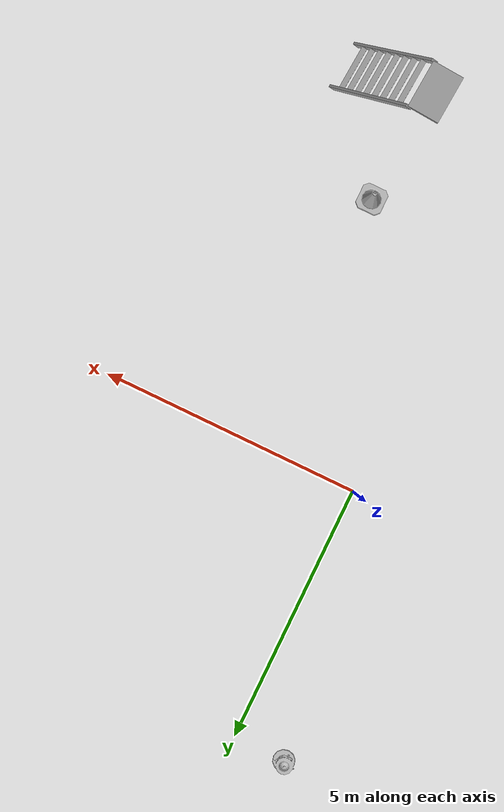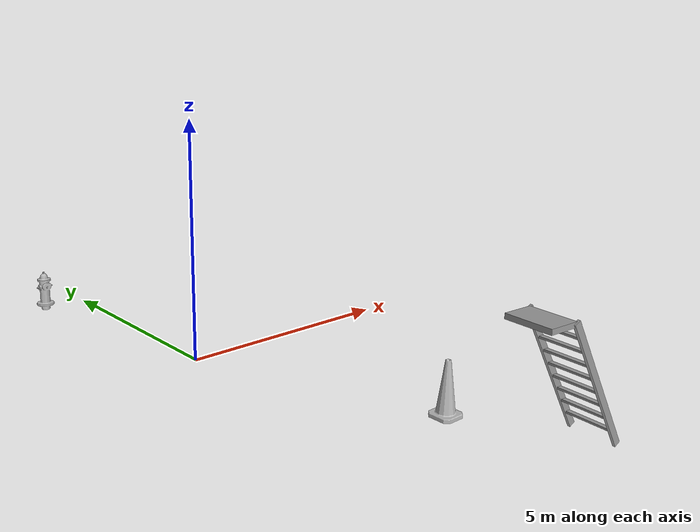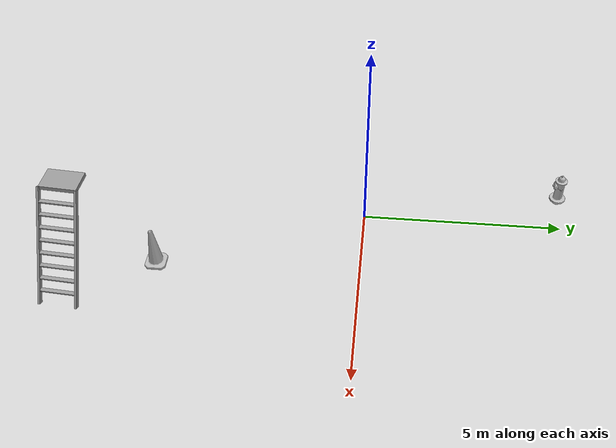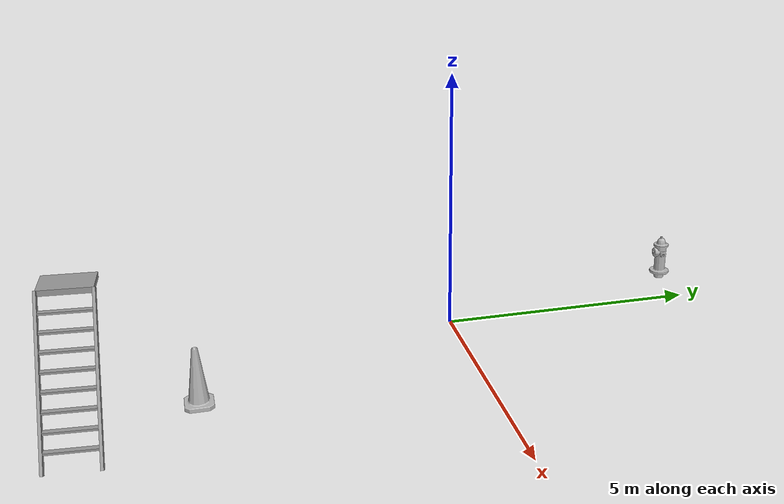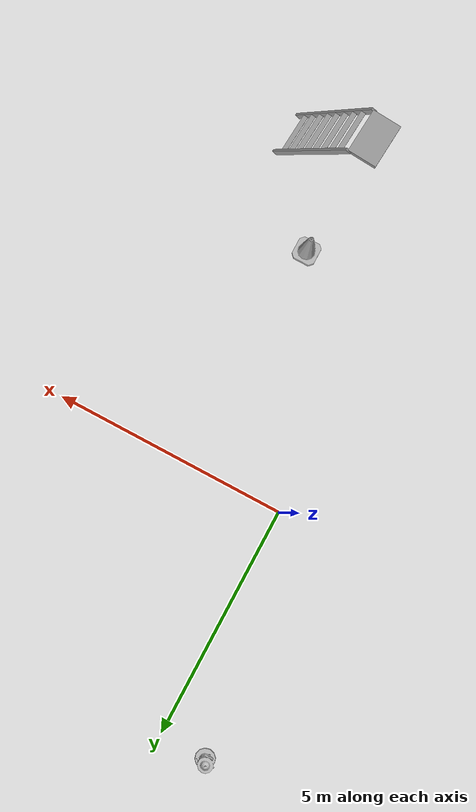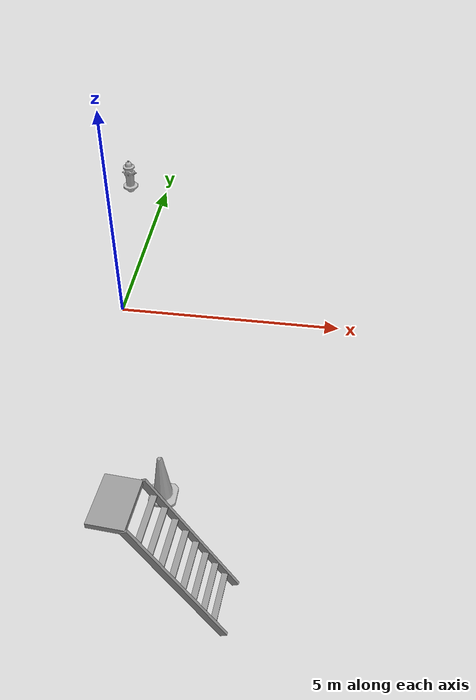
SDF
<sdf version="1.4">
 <world name="default">
  <include><uri>model://sun</uri></include>
  <model name="fire_hydrant">
   <include>
    <uri>model://fire_hydrant</uri>
    <pose>-1.000000 5.000000 0.000000 0.000000 0.000000 0.000000</pose>
   </include>
  </model>
  <model name="ladder_60deg_0rails">
   <include>
    <uri>model://ladder_60deg_0rails</uri>
    <pose>3.500000 -7.000000 0.000000 0.000000 0.000000 1.500000</pose>
   </include>
  </model>
  <model name="construction_cone">
   <include>
    <uri>model://construction_cone</uri>
    <pose>2.00000 -5.000000 0.000000 0.000000 0.000000 0.000000</pose>
   </include>
  </model>
 </world>
</sdf>

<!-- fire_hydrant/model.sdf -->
<sdf version="1.5">
  <model name="fire_hydrant">
    <static>true</static>
    <link name="link">
      <collision name="collision">
        <geometry>
          <mesh>
            <uri>file://isr-testbed/fire_hydrant/meshes/fire_hydrant.dae</uri>
          </mesh>
        </geometry>
      </collision>
      <visual name="visual">
        <geometry>
          <mesh>
            <uri>file://isr-testbed/fire_hydrant/meshes/fire_hydrant.dae</uri>
          </mesh>
        </geometry>
      </visual>
    </link>
  </model>
</sdf>

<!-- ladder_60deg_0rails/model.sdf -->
<sdf version="1.5">

  <model name= "ladder_60deg_0rails" >
    <static>true</static>
         <link name="step0" >
           <pose>0 0.15396007178390025 0.26666666666666666 0 0 0 </pose>
           <inertial>
             <mass> 9.7548192</mass>
             <inertia>
             <ixx> 0.009571241631672</ixx>
             <iyy> 0.6596303120915761</iyy>
             <izz> 0.666841521540096</izz>
             <ixy>0</ixy>
             <ixz>0</ixz>
             <iyz>0</iyz>
             </inertia>
           </inertial>

           <collision name="collision">
             <geometry>
              <box>
                <size>  0.9  0.1016  0.0381  </size>
              </box>
             </geometry>
           </collision>

          <visual name="visual">
            <geometry>
              <box>
                <size>  0.9  0.1016  0.0381  </size>
              </box>
            </geometry>
            <material>
              <script>
                <uri>file://media/materials/scripts/gazebo.material</uri>
                <name>Gazebo/Grey</name>
              </script>
            </material>
          </visual>
        </link>
         <link name="step1" >
           <pose>0 0.3079201435678005 0.5333333333333333 0 0 0 </pose>
           <inertial>
             <mass> 9.7548192</mass>
             <inertia>
             <ixx> 0.009571241631672</ixx>
             <iyy> 0.6596303120915761</iyy>
             <izz> 0.666841521540096</izz>
             <ixy>0</ixy>
             <ixz>0</ixz>
             <iyz>0</iyz>
             </inertia>
           </inertial>

           <collision name="collision">
             <geometry>
              <box>
                <size>  0.9  0.1016  0.0381  </size>
              </box>
             </geometry>
           </collision>

          <visual name="visual">
            <geometry>
              <box>
                <size>  0.9  0.1016  0.0381  </size>
              </box>
            </geometry>
            <material>
              <script>
                <uri>file://media/materials/scripts/gazebo.material</uri>
                <name>Gazebo/Grey</name>
              </script>
            </material>
          </visual>
        </link>
         <link name="step2" >
           <pose>0 0.46188021535170076 0.8 0 0 0 </pose>
           <inertial>
             <mass> 9.7548192</mass>
             <inertia>
             <ixx> 0.009571241631672</ixx>
             <iyy> 0.6596303120915761</iyy>
             <izz> 0.666841521540096</izz>
             <ixy>0</ixy>
             <ixz>0</ixz>
             <iyz>0</iyz>
             </inertia>
           </inertial>

           <collision name="collision">
             <geometry>
              <box>
                <size>  0.9  0.1016  0.0381  </size>
              </box>
             </geometry>
           </collision>

          <visual name="visual">
            <geometry>
              <box>
                <size>  0.9  0.1016  0.0381  </size>
              </box>
            </geometry>
            <material>
              <script>
                <uri>file://media/materials/scripts/gazebo.material</uri>
                <name>Gazebo/Grey</name>
              </script>
            </material>
          </visual>
        </link>
         <link name="step3" >
           <pose>0 0.615840287135601 1.0666666666666667 0 0 0 </pose>
           <inertial>
             <mass> 9.7548192</mass>
             <inertia>
             <ixx> 0.009571241631672</ixx>
             <iyy> 0.6596303120915761</iyy>
             <izz> 0.666841521540096</izz>
             <ixy>0</ixy>
             <ixz>0</ixz>
             <iyz>0</iyz>
             </inertia>
           </inertial>

           <collision name="collision">
             <geometry>
              <box>
                <size>  0.9  0.1016  0.0381  </size>
              </box>
             </geometry>
           </collision>

          <visual name="visual">
            <geometry>
              <box>
                <size>  0.9  0.1016  0.0381  </size>
              </box>
            </geometry>
            <material>
              <script>
                <uri>file://media/materials/scripts/gazebo.material</uri>
                <name>Gazebo/Grey</name>
              </script>
            </material>
          </visual>
        </link>
         <link name="step4" >
           <pose>0 0.7698003589195013 1.3333333333333333 0 0 0 </pose>
           <inertial>
             <mass> 9.7548192</mass>
             <inertia>
             <ixx> 0.009571241631672</ixx>
             <iyy> 0.6596303120915761</iyy>
             <izz> 0.666841521540096</izz>
             <ixy>0</ixy>
             <ixz>0</ixz>
             <iyz>0</iyz>
             </inertia>
           </inertial>

           <collision name="collision">
             <geometry>
              <box>
                <size>  0.9  0.1016  0.0381  </size>
              </box>
             </geometry>
           </collision>

          <visual name="visual">
            <geometry>
              <box>
                <size>  0.9  0.1016  0.0381  </size>
              </box>
            </geometry>
            <material>
              <script>
                <uri>file://media/materials/scripts/gazebo.material</uri>
                <name>Gazebo/Grey</name>
              </script>
            </material>
          </visual>
        </link>
         <link name="step5" >
           <pose>0 0.9237604307034015 1.6 0 0 0 </pose>
           <inertial>
             <mass> 9.7548192</mass>
             <inertia>
             <ixx> 0.009571241631672</ixx>
             <iyy> 0.6596303120915761</iyy>
             <izz> 0.666841521540096</izz>
             <ixy>0</ixy>
             <ixz>0</ixz>
             <iyz>0</iyz>
             </inertia>
           </inertial>

           <collision name="collision">
             <geometry>
              <box>
                <size>  0.9  0.1016  0.0381  </size>
              </box>
             </geometry>
           </collision>

          <visual name="visual">
            <geometry>
              <box>
                <size>  0.9  0.1016  0.0381  </size>
              </box>
            </geometry>
            <material>
              <script>
                <uri>file://media/materials/scripts/gazebo.material</uri>
                <name>Gazebo/Grey</name>
              </script>
            </material>
          </visual>
        </link>
         <link name="step6" >
           <pose>0 1.0777205024873018 1.8666666666666667 0 0 0 </pose>
           <inertial>
             <mass> 9.7548192</mass>
             <inertia>
             <ixx> 0.009571241631672</ixx>
             <iyy> 0.6596303120915761</iyy>
             <izz> 0.666841521540096</izz>
             <ixy>0</ixy>
             <ixz>0</ixz>
             <iyz>0</iyz>
             </inertia>
           </inertial>

           <collision name="collision">
             <geometry>
              <box>
                <size>  0.9  0.1016  0.0381  </size>
              </box>
             </geometry>
           </collision>

          <visual name="visual">
            <geometry>
              <box>
                <size>  0.9  0.1016  0.0381  </size>
              </box>
            </geometry>
            <material>
              <script>
                <uri>file://media/materials/scripts/gazebo.material</uri>
                <name>Gazebo/Grey</name>
              </script>
            </material>
          </visual>
        </link>
         <link name="step7" >
           <pose>0 1.231680574271202 2.1333333333333333 0 0 0 </pose>
           <inertial>
             <mass> 9.7548192</mass>
             <inertia>
             <ixx> 0.009571241631672</ixx>
             <iyy> 0.6596303120915761</iyy>
             <izz> 0.666841521540096</izz>
             <ixy>0</ixy>
             <ixz>0</ixz>
             <iyz>0</iyz>
             </inertia>
           </inertial>

           <collision name="collision">
             <geometry>
              <box>
                <size>  0.9  0.1016  0.0381  </size>
              </box>
             </geometry>
           </collision>

          <visual name="visual">
            <geometry>
              <box>
                <size>  0.9  0.1016  0.0381  </size>
              </box>
            </geometry>
            <material>
              <script>
                <uri>file://media/materials/scripts/gazebo.material</uri>
                <name>Gazebo/Grey</name>
              </script>
            </material>
          </visual>
        </link>
    <link name="landing">
      <pose>0 1.6856406460551023 2.4 0 0 0 </pose>
        <inertial>
          <mass> 57.607200000000006</mass>
          <inertia>
          <ixx> 1.735184598966</ixx>
          <iyy> 3.8954545989660008</iyy>
          <izz> 5.616702</izz>
          <ixy>0</ixy>
          <ixz>0</ixz>
          <iyz>0</iyz>
          </inertia>
        </inertial>

        <collision name="collision">
          <geometry>
           <box>
             <size> 0.9 0.6 0.1016</size>
           </box>
          </geometry>
        </collision>

        <visual name="visual">
          <geometry>
            <box>
             <size> 0.9 0.6 0.1016</size>
            </box>
          </geometry>
          <material>
            <script>
              <uri>file://media/materials/scripts/gazebo.material</uri>
              <name>Gazebo/Grey</name>
            </script>
          </material>
        </visual>
    </link>

      <link name="left_side_wall" >
        <pose>-0.45 0.6928203230275511 1.2 1.0471975511965976 0 0 </pose>
        <collision name="collision">
          <geometry>
            <box>
              <size> 0.0508  2.851281292110204  0.13 </size>
            </box>
          </geometry>
        </collision>

        <visual name="visual">
          <geometry>
            <box>
              <size> 0.0508  2.851281292110204  0.13 </size>
            </box>
          </geometry>
          <material>
            <script>
              <uri>file://media/materials/scripts/gazebo.material</uri>
              <name>Gazebo/Grey</name>
            </script>
          </material>
        </visual>

      </link>
      <link name="right_side_wall" >
        <pose>0.45 0.6928203230275511 1.2 1.0471975511965976 0 0 </pose>
        <collision name="collision">
          <geometry>
            <box>
              <size> 0.0508  2.851281292110204  0.13 </size>
            </box>
          </geometry>
        </collision>

        <visual name="visual">
          <geometry>
            <box>
              <size> 0.0508  2.851281292110204  0.13 </size>
            </box>
          </geometry>
          <material>
            <script>
              <uri>file://media/materials/scripts/gazebo.material</uri>
              <name>Gazebo/Grey</name>
            </script>
          </material>
        </visual>

      </link>

  </model>
</sdf>

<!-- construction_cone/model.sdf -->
<sdf version="1.5">
  <model name="Construction Cone">
    <link name="link">
      <collision name="collision">
        <geometry>
          <mesh>
            <scale>10 10 10</scale>
            <uri>file://isr-testbed/construction_cone/meshes/construction_cone.dae</uri>
          </mesh>
        </geometry>
      </collision>
      <visual name="visual">
        <geometry>
          <mesh>
            <scale>10 10 10</scale>
            <uri>file://isr-testbed/construction_cone/meshes/construction_cone.dae</uri>
          </mesh>
        </geometry>
      </visual>
    </link>
  </model>
</sdf>
